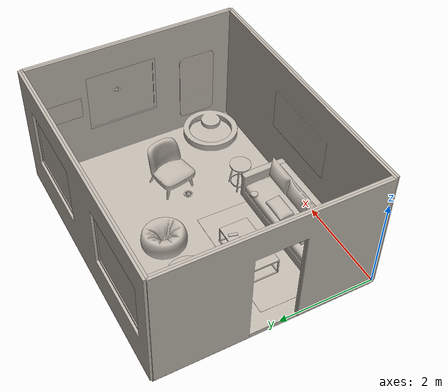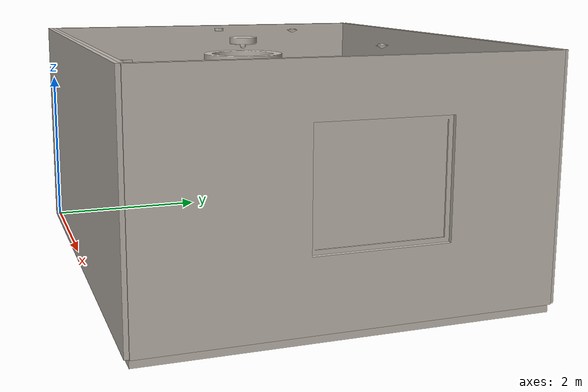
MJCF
<mujoco model="scene_scene_030">
  <compiler angle="radian" boundmass="0.001" boundinertia="0.001" meshdir="meshes" texturedir="meshes/scenesmith" />
  <visual>
    <headlight ambient="0.4 0.4 0.4" diffuse="0.8 0.8 0.8" specular="0.1 0.1 0.1" />
  </visual>
  <asset>
    <texture type="skybox" colorspace="auto" name="skybox" builtin="gradient" rgb1="0.3 0.5 0.7" rgb2="0 0 0" width="512" height="3072" />
    <texture type="2d" colorspace="auto" name="grid" builtin="checker" mark="edge" rgb1="0.2 0.3 0.4" rgb2="0.1 0.2 0.3" markrgb="0.8 0.8 0.8" width="512" height="512" />
    <texture type="2d" colorspace="linear" name="living_room_floors_floor_tex" file="living_room_floors_floor_texture.png" />
    <texture type="2d" colorspace="linear" name="living_room_north_wall_wall_tex" file="living_room_north_wall_wall_texture.png" />
    <texture type="2d" colorspace="linear" name="living_room_window_1_window_tex" file="living_room_window_1_window_texture.png" />
    <texture type="2d" colorspace="linear" name="living_room_coffee_table_1767838392_coffee_table_tex" file="living_room_coffee_table_1767838392_coffee_table_texture.png" />
    <texture type="2d" colorspace="linear" name="living_room_bean_bag_chair_1767838252_bean_bag_chair_tex" file="living_room_bean_bag_chair_1767838252_bean_bag_chair_texture.png" />
    <texture type="2d" colorspace="linear" name="living_room_couch_1767839693_couch_s1.11_1.11_1.11_tex" file="living_room_couch_1767839693_couch_s1.11_1.11_1.11_texture.png" />
    <texture type="2d" colorspace="linear" name="living_room_rug_1767841508_rug_tex" file="living_room_rug_1767841508_rug_texture.png" />
    <texture type="2d" colorspace="linear" name="living_room_side_table_1767841505_side_table_tex" file="living_room_side_table_1767841505_side_table_texture.png" />
    <texture type="2d" colorspace="linear" name="living_room_lounge_chair_1767841505_lounge_chair_tex" file="living_room_lounge_chair_1767841505_lounge_chair_texture.png" />
    <texture type="2d" colorspace="linear" name="living_room_canvas_print_1767842115_canvas_print_tex" file="living_room_canvas_print_1767842115_canvas_print_texture.png" />
    <texture type="2d" colorspace="linear" name="living_room_geometric_print_1767842115_geometric_print_tex" file="living_room_geometric_print_1767842115_geometric_print_texture.png" />
    <texture type="2d" colorspace="linear" name="living_room_mirror_1767842270_mirror_tex" file="living_room_mirror_1767842270_mirror_texture.png" />
    <texture type="2d" colorspace="linear" name="living_room_photograph_1767842115_photograph_tex" file="living_room_photograph_1767842115_photograph_texture.png" />
    <texture type="2d" colorspace="linear" name="living_room_abstract_print_1767842115_abstract_print_tex" file="living_room_abstract_print_1767842115_abstract_print_texture.png" />
    <texture type="2d" colorspace="linear" name="living_room_clock_1767842115_clock_tex" file="living_room_clock_1767842115_clock_texture.png" />
    <texture type="2d" colorspace="linear" name="living_room_semi_flush_ceiling_light_1767843282_semi_flush_ceiling_light_tex" file="living_room_semi_flush_ceiling_light_1767843282_semi_flush_ceiling_light_texture.png" />
    <texture type="2d" colorspace="linear" name="living_room_recessed_gimbal_downlight_1767842993_recessed_gimbal_downlight_tex" file="living_room_recessed_gimbal_downlight_1767842993_recessed_gimbal_downlight_texture.png" />
    <texture type="2d" colorspace="linear" name="living_room_smoke_detector_1767843051_smoke_detector_tex" file="living_room_smoke_detector_1767843051_smoke_detector_texture.png" />
    <texture type="2d" colorspace="linear" name="living_room_coffee_table_book_1767843750_coffee_table_book_tex" file="living_room_coffee_table_book_1767843750_coffee_table_book_texture.png" />
    <texture type="2d" colorspace="linear" name="living_room_tv_remote_control_1767844097_tv_remote_control_s0.42_0.42_0.42_tex" file="living_room_tv_remote_control_1767844097_tv_remote_control_s0.42_0.42_0.42_texture.png" />
    <texture type="2d" colorspace="linear" name="living_room_silicone_coaster_1767843954_silicone_coaster_tex" file="living_room_silicone_coaster_1767843954_silicone_coaster_texture.png" />
    <texture type="2d" colorspace="linear" name="living_room_glass_tumbler_1767843750_glass_tumbler_tex" file="living_room_glass_tumbler_1767843750_glass_tumbler_texture.png" />
    <texture type="2d" colorspace="linear" name="living_room_potted_succulent_plant_1767844729_potted_succulent_plant_tex" file="living_room_potted_succulent_plant_1767844729_potted_succulent_plant_texture.png" />
    <texture type="2d" colorspace="linear" name="living_room_glass_jar_1767844787_glass_jar_tex" file="living_room_glass_jar_1767844787_glass_jar_texture.png" />
    <texture type="2d" colorspace="linear" name="living_room_hardcover_book_1767844974_hardcover_book_s0.7_0.7_0.7_tex" file="living_room_hardcover_book_1767844974_hardcover_book_s0.7_0.7_0.7_texture.png" />
    <texture type="2d" colorspace="linear" name="living_room_throw_pillow_1767845800_throw_pillow_tex" file="living_room_throw_pillow_1767845800_throw_pillow_texture.png" />
    <texture type="2d" colorspace="linear" name="living_room_knit_throw_blanket_1767845434_knit_throw_blanket_tex" file="living_room_knit_throw_blanket_1767845434_knit_throw_blanket_texture.png" />
    <material name="grid" texture="grid" texrepeat="10 10" />
    <material name="living_room_floors_floor_tex" texture="living_room_floors_floor_tex" />
    <material name="living_room_north_wall_wall_tex" texture="living_room_north_wall_wall_tex" />
    <material name="living_room_window_1_window_tex" texture="living_room_window_1_window_tex" />
    <material name="living_room_coffee_table_1767838392_coffee_table_tex" texture="living_room_coffee_table_1767838392_coffee_table_tex" />
    <material name="living_room_bean_bag_chair_1767838252_bean_bag_chair_tex" texture="living_room_bean_bag_chair_1767838252_bean_bag_chair_tex" />
    <material name="living_room_couch_1767839693_couch_s1.11_1.11_1.11_tex" texture="living_room_couch_1767839693_couch_s1.11_1.11_1.11_tex" />
    <material name="living_room_rug_1767841508_rug_tex" texture="living_room_rug_1767841508_rug_tex" />
    <material name="living_room_side_table_1767841505_side_table_tex" texture="living_room_side_table_1767841505_side_table_tex" />
    <material name="living_room_lounge_chair_1767841505_lounge_chair_tex" texture="living_room_lounge_chair_1767841505_lounge_chair_tex" />
    <material name="living_room_canvas_print_1767842115_canvas_print_tex" texture="living_room_canvas_print_1767842115_canvas_print_tex" />
    <material name="living_room_geometric_print_1767842115_geometric_print_tex" texture="living_room_geometric_print_1767842115_geometric_print_tex" />
    <material name="living_room_mirror_1767842270_mirror_tex" texture="living_room_mirror_1767842270_mirror_tex" />
    <material name="living_room_photograph_1767842115_photograph_tex" texture="living_room_photograph_1767842115_photograph_tex" />
    <material name="living_room_abstract_print_1767842115_abstract_print_tex" texture="living_room_abstract_print_1767842115_abstract_print_tex" />
    <material name="living_room_clock_1767842115_clock_tex" texture="living_room_clock_1767842115_clock_tex" />
    <material name="living_room_semi_flush_ceiling_light_1767843282_semi_flush_ceiling_light_tex" texture="living_room_semi_flush_ceiling_light_1767843282_semi_flush_ceiling_light_tex" />
    <material name="living_room_recessed_gimbal_downlight_1767842993_recessed_gimbal_downlight_tex" texture="living_room_recessed_gimbal_downlight_1767842993_recessed_gimbal_downlight_tex" />
    <material name="living_room_smoke_detector_1767843051_smoke_detector_tex" texture="living_room_smoke_detector_1767843051_smoke_detector_tex" />
    <material name="living_room_coffee_table_book_1767843750_coffee_table_book_tex" texture="living_room_coffee_table_book_1767843750_coffee_table_book_tex" />
    <material name="living_room_tv_remote_control_1767844097_tv_remote_control_s0.42_0.42_0.42_tex" texture="living_room_tv_remote_control_1767844097_tv_remote_control_s0.42_0.42_0.42_tex" />
    <material name="living_room_silicone_coaster_1767843954_silicone_coaster_tex" texture="living_room_silicone_coaster_1767843954_silicone_coaster_tex" />
    <material name="living_room_glass_tumbler_1767843750_glass_tumbler_tex" texture="living_room_glass_tumbler_1767843750_glass_tumbler_tex" />
    <material name="living_room_potted_succulent_plant_1767844729_potted_succulent_plant_tex" texture="living_room_potted_succulent_plant_1767844729_potted_succulent_plant_tex" />
    <material name="living_room_glass_jar_1767844787_glass_jar_tex" texture="living_room_glass_jar_1767844787_glass_jar_tex" />
    <material name="living_room_hardcover_book_1767844974_hardcover_book_s0.7_0.7_0.7_tex" texture="living_room_hardcover_book_1767844974_hardcover_book_s0.7_0.7_0.7_tex" />
    <material name="living_room_throw_pillow_1767845800_throw_pillow_tex" texture="living_room_throw_pillow_1767845800_throw_pillow_tex" />
    <material name="living_room_knit_throw_blanket_1767845434_knit_throw_blanket_tex" texture="living_room_knit_throw_blanket_1767845434_knit_throw_blanket_tex" />
    <mesh name="room_geometry_living_room_room_geometry_body_link_floor_visual_visual_mesh" file="scenesmith/living_room_floors_floor.obj" />
    <mesh name="room_geometry_living_room_room_geometry_body_link_north_wall_visual_visual_mesh" file="scenesmith/living_room_north_wall_wall.obj" />
    <mesh name="room_geometry_living_room_room_geometry_body_link_window_1_visual_visual_mesh" file="scenesmith/living_room_window_1_window.obj" />
    <mesh name="room_geometry_living_room_room_geometry_body_link_south_wall_visual_visual_mesh" file="scenesmith/living_room_south_wall_wall.obj" />
    <mesh name="room_geometry_living_room_room_geometry_body_link_east_wall_visual_visual_mesh" file="scenesmith/living_room_east_wall_wall.obj" />
    <mesh name="room_geometry_living_room_room_geometry_body_link_window_3_visual_visual_mesh" file="scenesmith/living_room_window_3_window.obj" />
    <mesh name="room_geometry_living_room_room_geometry_body_link_west_wall_visual_visual_mesh" file="scenesmith/living_room_west_wall_wall.obj" />
    <mesh name="living_room_coffee_table_0_base_link_visual_visual_mesh" file="scenesmith/living_room_coffee_table_1767838392_coffee_table.obj" />
    <mesh name="living_room_bean_bag_chair_0_base_link_visual_visual_mesh" file="scenesmith/living_room_bean_bag_chair_1767838252_bean_bag_chair.obj" />
    <mesh name="living_room_couch_0_base_link_visual_visual_mesh" file="scenesmith/living_room_couch_1767839693_couch_s1.11_1.11_1.11.obj" />
    <mesh name="living_room_rug_0_base_link_visual_visual_mesh" file="scenesmith/living_room_rug_1767841508_rug.obj" />
    <mesh name="living_room_side_table_0_base_link_visual_visual_mesh" file="scenesmith/living_room_side_table_1767841505_side_table.obj" />
    <mesh name="living_room_lounge_chair_0_base_link_visual_visual_mesh" file="scenesmith/living_room_lounge_chair_1767841505_lounge_chair.obj" />
    <mesh name="living_room_canvas_print_0_base_link_visual_visual_mesh" file="scenesmith/living_room_canvas_print_1767842115_canvas_print.obj" />
    <mesh name="living_room_geometric_print_0_base_link_visual_visual_mesh" file="scenesmith/living_room_geometric_print_1767842115_geometric_print.obj" />
    <mesh name="living_room_mirror_0_base_link_visual_visual_mesh" file="scenesmith/living_room_mirror_1767842270_mirror.obj" />
    <mesh name="living_room_photograph_0_base_link_visual_visual_mesh" file="scenesmith/living_room_photograph_1767842115_photograph.obj" />
    <mesh name="living_room_abstract_print_0_base_link_visual_visual_mesh" file="scenesmith/living_room_abstract_print_1767842115_abstract_print.obj" />
    <mesh name="living_room_clock_0_base_link_visual_visual_mesh" file="scenesmith/living_room_clock_1767842115_clock.obj" />
    <mesh name="living_room_semi_flush_ceiling_light_0_base_link_visual_visual_mesh" file="scenesmith/living_room_semi_flush_ceiling_light_1767843282_semi_flush_ceiling_light.obj" />
    <mesh name="living_room_recessed_gimbal_downlight_0_base_link_visual_visual_mesh" file="scenesmith/living_room_recessed_gimbal_downlight_1767842993_recessed_gimbal_downlight.obj" />
    <mesh name="living_room_smoke_detector_0_base_link_visual_visual_mesh" file="scenesmith/living_room_smoke_detector_1767843051_smoke_detector.obj" />
    <mesh name="living_room_coffee_table_book_0_base_link_visual_visual_mesh" file="scenesmith/living_room_coffee_table_book_1767843750_coffee_table_book.obj" />
    <mesh name="living_room_tv_remote_control_0_base_link_visual_visual_mesh" file="scenesmith/living_room_tv_remote_control_1767844097_tv_remote_control_s0.42_0.42_0.42.obj" />
    <mesh name="living_room_silicone_coaster_0_s0_0_base_link_visual_visual_mesh" file="scenesmith/living_room_silicone_coaster_1767843954_silicone_coaster.obj" />
    <mesh name="living_room_glass_tumbler_0_s0_1_base_link_visual_visual_mesh" file="scenesmith/living_room_glass_tumbler_1767843750_glass_tumbler.obj" />
    <mesh name="living_room_potted_succulent_plant_0_base_link_visual_visual_mesh" file="scenesmith/living_room_potted_succulent_plant_1767844729_potted_succulent_plant.obj" />
    <mesh name="living_room_glass_jar_0_base_link_visual_visual_mesh" file="scenesmith/living_room_glass_jar_1767844787_glass_jar.obj" />
    <mesh name="living_room_hardcover_book_0_base_link_visual_visual_mesh" file="scenesmith/living_room_hardcover_book_1767844974_hardcover_book_s0.7_0.7_0.7.obj" />
    <mesh name="living_room_throw_pillow_0_base_link_visual_visual_mesh" file="scenesmith/living_room_throw_pillow_1767845800_throw_pillow.obj" />
    <mesh name="living_room_knit_throw_blanket_0_base_link_visual_visual_mesh" file="scenesmith/living_room_knit_throw_blanket_1767845434_knit_throw_blanket.obj" />
  </asset>
  <worldbody>
    <body name="room_geometry_living_room" pos="2.75 2.25 0">
      <body name="room_geometry_living_room_room_geometry_body_link">
        <geom name="room_geometry_living_room_room_geometry_body_link_floor_collision_collision" size="2.75 2.25 0.05" pos="0 0 -0.05" type="box" group="3" contype="1" conaffinity="1" rgba="0.2 0.8 0.3 0.001" />
        <geom name="room_geometry_living_room_room_geometry_body_link_north_wall_collision_collision" size="2.75 0.025 1.35" pos="0 2.225 1.35" type="box" group="3" contype="1" conaffinity="1" rgba="0.2 0.8 0.3 0.001" />
        <geom name="room_geometry_living_room_room_geometry_body_link_south_wall_collision_collision" size="2.75 0.025 1.35" pos="0 -2.225 1.35" type="box" group="3" contype="1" conaffinity="1" rgba="0.2 0.8 0.3 0.001" />
        <geom name="room_geometry_living_room_room_geometry_body_link_east_wall_collision_collision" size="0.025 2.25 1.35" pos="2.725 0 1.35" type="box" group="3" contype="1" conaffinity="1" rgba="0.2 0.8 0.3 0.001" />
        <geom name="room_geometry_living_room_room_geometry_body_link_west_wall_collision_0_collision" size="0.025 0.826696 1.35" pos="-2.725 -1.4233 1.35" type="box" group="3" contype="1" conaffinity="1" rgba="0.2 0.8 0.3 0.001" />
        <geom name="room_geometry_living_room_room_geometry_body_link_west_wall_collision_1_collision" size="0.025 0.923304 1.35" pos="-2.725 1.3267 1.35" type="box" group="3" contype="1" conaffinity="1" rgba="0.2 0.8 0.3 0.001" />
        <geom name="room_geometry_living_room_room_geometry_body_link_floor_visual_visual" type="mesh" contype="0" conaffinity="0" material="living_room_floors_floor_tex" mesh="room_geometry_living_room_room_geometry_body_link_floor_visual_visual_mesh" group="1" />
        <geom name="room_geometry_living_room_room_geometry_body_link_north_wall_visual_visual" pos="0 2.225 0" quat="1 0 0 0" type="mesh" contype="0" conaffinity="0" material="living_room_north_wall_wall_tex" mesh="room_geometry_living_room_room_geometry_body_link_north_wall_visual_visual_mesh" group="1" />
        <geom name="room_geometry_living_room_room_geometry_body_link_window_1_visual_visual" pos="-1.51008 2.225 1.45" quat="1 0 0 0" type="mesh" contype="0" conaffinity="0" material="living_room_window_1_window_tex" mesh="room_geometry_living_room_room_geometry_body_link_window_1_visual_visual_mesh" group="1" />
        <geom name="room_geometry_living_room_room_geometry_body_link_window_2_visual_visual" pos="1.33967 2.225 1.45" quat="1 0 0 0" type="mesh" contype="0" conaffinity="0" material="living_room_window_1_window_tex" mesh="room_geometry_living_room_room_geometry_body_link_window_1_visual_visual_mesh" group="1" />
        <geom name="room_geometry_living_room_room_geometry_body_link_north_wall_exterior_visual_visual" pos="0 2.275 0" quat="1 0 0 0" type="mesh" contype="0" conaffinity="0" material="living_room_north_wall_wall_tex" mesh="room_geometry_living_room_room_geometry_body_link_north_wall_visual_visual_mesh" group="1" />
        <geom name="room_geometry_living_room_room_geometry_body_link_south_wall_visual_visual" pos="0 -2.225 0" quat="1 0 0 0" type="mesh" contype="0" conaffinity="0" material="living_room_north_wall_wall_tex" mesh="room_geometry_living_room_room_geometry_body_link_south_wall_visual_visual_mesh" group="1" />
        <geom name="room_geometry_living_room_room_geometry_body_link_south_wall_exterior_visual_visual" pos="0 -2.275 0" quat="1 0 0 0" type="mesh" contype="0" conaffinity="0" material="living_room_north_wall_wall_tex" mesh="room_geometry_living_room_room_geometry_body_link_south_wall_visual_visual_mesh" group="1" />
        <geom name="room_geometry_living_room_room_geometry_body_link_east_wall_visual_visual" pos="2.725 0 0" quat="0.707105 0 0 0.707108" type="mesh" contype="0" conaffinity="0" material="living_room_north_wall_wall_tex" mesh="room_geometry_living_room_room_geometry_body_link_east_wall_visual_visual_mesh" group="1" />
        <geom name="room_geometry_living_room_room_geometry_body_link_window_3_visual_visual" pos="2.725 0.273496 1.45" quat="1 0 0 0" type="mesh" contype="0" conaffinity="0" material="living_room_window_1_window_tex" mesh="room_geometry_living_room_room_geometry_body_link_window_3_visual_visual_mesh" group="1" />
        <geom name="room_geometry_living_room_room_geometry_body_link_east_wall_exterior_visual_visual" pos="2.775 0 0" quat="0.707105 0 0 0.707108" type="mesh" contype="0" conaffinity="0" material="living_room_north_wall_wall_tex" mesh="room_geometry_living_room_room_geometry_body_link_east_wall_visual_visual_mesh" group="1" />
        <geom name="room_geometry_living_room_room_geometry_body_link_west_wall_visual_visual" pos="-2.725 0 0" quat="0.707105 0 0 0.707108" type="mesh" contype="0" conaffinity="0" material="living_room_north_wall_wall_tex" mesh="room_geometry_living_room_room_geometry_body_link_west_wall_visual_visual_mesh" group="1" />
        <geom name="room_geometry_living_room_room_geometry_body_link_west_wall_exterior_visual_visual" pos="-2.775 0 0" quat="0.707105 0 0 0.707108" type="mesh" contype="0" conaffinity="0" material="living_room_north_wall_wall_tex" mesh="room_geometry_living_room_room_geometry_body_link_west_wall_visual_visual_mesh" group="1" />
      </body>
    </body>
    <body name="living_room_coffee_table_0" pos="1.54329 1.74621 -0.000609882" quat="1 5.77811e-05 1.63364e-05 0.000878355">
      <body name="living_room_coffee_table_0_base_link">
        <geom name="living_room_coffee_table_0_base_link_visual_visual" type="mesh" contype="0" conaffinity="0" material="living_room_coffee_table_1767838392_coffee_table_tex" mesh="living_room_coffee_table_0_base_link_visual_visual_mesh" group="1" />
      </body>
      <geom name="living_room_coffee_table_0_static_collision" type="box" pos="0 0 0.1821873" size="0.6 0.306186 0.1821873" group="3" contype="1" conaffinity="1" rgba="0.2 0.8 0.3 0.001" friction="0.8 0.02 0.002" />
    </body>
    <body name="living_room_bean_bag_chair_0" pos="1.50888 3.03652 -0.00127092" quat="0.999829 -0.00117003 -0.00173349 0.0183654">
      <body name="living_room_bean_bag_chair_0_base_link">
        <geom name="living_room_bean_bag_chair_0_base_link_visual_visual" type="mesh" contype="0" conaffinity="0" material="living_room_bean_bag_chair_1767838252_bean_bag_chair_tex" mesh="living_room_bean_bag_chair_0_base_link_visual_visual_mesh" group="1" />
      </body>
      <geom name="living_room_bean_bag_chair_0_static_collision" type="box" pos="0 0 0.1793727" size="0.45 0.456452 0.1793727" group="3" contype="1" conaffinity="1" rgba="0.2 0.8 0.3 0.001" friction="0.8 0.02 0.002" />
    </body>
    <body name="living_room_bean_bag_chair_1" pos="2.58945 3.01152 -0.00127092" quat="0.999992 -0.00120757 -0.00170755 -0.00345188">
      <body name="living_room_bean_bag_chair_1_base_link">
        <geom name="living_room_bean_bag_chair_1_base_link_visual_visual" type="mesh" contype="0" conaffinity="0" material="living_room_bean_bag_chair_1767838252_bean_bag_chair_tex" mesh="living_room_bean_bag_chair_0_base_link_visual_visual_mesh" group="1" />
      </body>
      <geom name="living_room_bean_bag_chair_1_static_collision" type="box" pos="0 0 0.1793727" size="0.45 0.456452 0.1793727" group="3" contype="1" conaffinity="1" rgba="0.2 0.8 0.3 0.001" friction="0.8 0.02 0.002" />
    </body>
    <body name="living_room_couch_0" pos="1.58275 0.596787 -0.00136116" quat="1 0.000479238 -9.66477e-06 -1.33779e-05">
      <body name="living_room_couch_0_base_link">
        <geom name="living_room_couch_0_base_link_visual_visual" type="mesh" contype="0" conaffinity="0" material="living_room_couch_1767839693_couch_s1.11_1.11_1.11_tex" mesh="living_room_couch_0_base_link_visual_visual_mesh" group="1" />
      </body>
      <geom name="living_room_couch_0_static_collision" type="box" pos="0 0 0.4353264" size="1.4495 0.4825557 0.4353264" group="3" contype="1" conaffinity="1" rgba="0.2 0.8 0.3 0.001" friction="0.8 0.02 0.002" />
    </body>
    <body name="living_room_rug_0" pos="1.55703 1.33752 0" quat="0.999985 0 0 -0.00539248">
      <body name="living_room_rug_0_base_link">
        <geom name="living_room_rug_0_base_link_visual_visual" type="mesh" contype="0" conaffinity="0" material="living_room_rug_1767841508_rug_tex" mesh="living_room_rug_0_base_link_visual_visual_mesh" group="1" />
      </body>
      <geom name="living_room_rug_0_static_collision" type="box" pos="0 0 0.0015" size="1.25 0.85 0.005" group="3" contype="1" conaffinity="1" rgba="0.2 0.8 0.3 0.001" friction="0.8 0.02 0.002" />
    </body>
    <body name="living_room_side_table_0" pos="3.28581 0.936507 -0.00227074" quat="0.999981 -0.00178818 -0.00051207 -0.0059059">
      <body name="living_room_side_table_0_base_link">
        <geom name="living_room_side_table_0_base_link_visual_visual" type="mesh" contype="0" conaffinity="0" material="living_room_side_table_1767841505_side_table_tex" mesh="living_room_side_table_0_base_link_visual_visual_mesh" group="1" />
      </body>
      <geom name="living_room_side_table_0_static_collision" type="box" pos="0 0 0.2993177" size="0.225 0.2159581 0.2993177" group="3" contype="1" conaffinity="1" rgba="0.2 0.8 0.3 0.001" friction="0.8 0.02 0.002" />
    </body>
    <body name="living_room_lounge_chair_0" pos="3.96281 2.18578 -0.00218798" quat="0.636514 7.70653e-05 0.000436908 0.771265">
      <body name="living_room_lounge_chair_0_base_link">
        <geom name="living_room_lounge_chair_0_base_link_visual_visual" type="mesh" contype="0" conaffinity="0" material="living_room_lounge_chair_1767841505_lounge_chair_tex" mesh="living_room_lounge_chair_0_base_link_visual_visual_mesh" group="1" />
      </body>
      <geom name="living_room_lounge_chair_0_static_collision" type="box" pos="0 0 0.4609135" size="0.375 0.4206442 0.4609135" group="3" contype="1" conaffinity="1" rgba="0.2 0.8 0.3 0.001" friction="0.8 0.02 0.002" />
    </body>
    <body name="living_room_canvas_print_0" pos="2.65 0.05 1.55836" quat="1 0 -0.000815025 0">
      <body name="living_room_canvas_print_0_base_link">
        <geom name="living_room_canvas_print_0_base_link_visual_visual" type="mesh" contype="0" conaffinity="0" material="living_room_canvas_print_1767842115_canvas_print_tex" mesh="living_room_canvas_print_0_base_link_visual_visual_mesh" group="1" />
      </body>
      <geom name="living_room_canvas_print_0_static_collision" type="box" pos="0 0.01055027 0" size="0.8691478 0.01055027 0.45" group="3" contype="1" conaffinity="1" rgba="0.2 0.8 0.3 0.001" friction="0.8 0.02 0.002" />
    </body>
    <body name="living_room_geometric_print_0" pos="5.45 3.82 1.45" quat="0.707107 0 0 0.707107">
      <body name="living_room_geometric_print_0_base_link">
        <geom name="living_room_geometric_print_0_base_link_visual_visual" type="mesh" contype="0" conaffinity="0" material="living_room_geometric_print_1767842115_geometric_print_tex" mesh="living_room_geometric_print_0_base_link_visual_visual_mesh" group="1" />
      </body>
      <geom name="living_room_geometric_print_0_static_collision" type="box" pos="0 0.008105335 0" size="0.4 0.008105335 0.2347752" group="3" contype="1" conaffinity="1" rgba="0.2 0.8 0.3 0.001" friction="0.8 0.02 0.002" />
    </body>
    <body name="living_room_mirror_0" pos="5.45 0.819085 1.1" quat="0.707106 0.00130315 -0.00130315 0.707106">
      <body name="living_room_mirror_0_base_link">
        <geom name="living_room_mirror_0_base_link_visual_visual" type="mesh" contype="0" conaffinity="0" material="living_room_mirror_1767842270_mirror_tex" mesh="living_room_mirror_0_base_link_visual_visual_mesh" group="1" />
      </body>
      <geom name="living_room_mirror_0_static_collision" type="box" pos="0 0.01053924 0" size="0.4 0.01053924 0.771327" group="3" contype="1" conaffinity="1" rgba="0.2 0.8 0.3 0.001" friction="0.8 0.02 0.002" />
    </body>
    <body name="living_room_photograph_0" pos="0.05 3.28715 1.49614" quat="0.707097 -0.00377367 -0.00377367 -0.707097">
      <body name="living_room_photograph_0_base_link">
        <geom name="living_room_photograph_0_base_link_visual_visual" type="mesh" contype="0" conaffinity="0" material="living_room_photograph_1767842115_photograph_tex" mesh="living_room_photograph_0_base_link_visual_visual_mesh" group="1" />
      </body>
      <geom name="living_room_photograph_0_static_collision" type="box" pos="0 0.009305875 0" size="0.275 0.009305875 0.38801" group="3" contype="1" conaffinity="1" rgba="0.2 0.8 0.3 0.001" friction="0.8 0.02 0.002" />
    </body>
    <body name="living_room_photograph_1" pos="0.05 4.06695 1.51753" quat="0.707106 0.000922164 0.000922164 -0.707106">
      <body name="living_room_photograph_1_base_link">
        <geom name="living_room_photograph_1_base_link_visual_visual" type="mesh" contype="0" conaffinity="0" material="living_room_photograph_1767842115_photograph_tex" mesh="living_room_photograph_0_base_link_visual_visual_mesh" group="1" />
      </body>
      <geom name="living_room_photograph_1_static_collision" type="box" pos="0 0.009305875 0" size="0.275 0.009305875 0.38801" group="3" contype="1" conaffinity="1" rgba="0.2 0.8 0.3 0.001" friction="0.8 0.02 0.002" />
    </body>
    <body name="living_room_abstract_print_0" pos="0.05 0.87422 1.55" quat="0.707104 0.00198851 0.00198851 -0.707104">
      <body name="living_room_abstract_print_0_base_link">
        <geom name="living_room_abstract_print_0_base_link_visual_visual" type="mesh" contype="0" conaffinity="0" material="living_room_abstract_print_1767842115_abstract_print_tex" mesh="living_room_abstract_print_0_base_link_visual_visual_mesh" group="1" />
      </body>
      <geom name="living_room_abstract_print_0_static_collision" type="box" pos="0 0.01328513 0" size="0.25 0.01328513 0.6791843" group="3" contype="1" conaffinity="1" rgba="0.2 0.8 0.3 0.001" friction="0.8 0.02 0.002" />
    </body>
    <body name="living_room_clock_0" pos="2.6973 4.45 1.78389" quat="0 0.00208587 0 0.999998">
      <body name="living_room_clock_0_base_link">
        <geom name="living_room_clock_0_base_link_visual_visual" type="mesh" contype="0" conaffinity="0" material="living_room_clock_1767842115_clock_tex" mesh="living_room_clock_0_base_link_visual_visual_mesh" group="1" />
      </body>
      <geom name="living_room_clock_0_static_collision" type="box" pos="0 0.01119733 0" size="0.25 0.01119733 0.2499977" group="3" contype="1" conaffinity="1" rgba="0.2 0.8 0.3 0.001" friction="0.8 0.02 0.002" />
    </body>
    <body name="living_room_semi_flush_ceiling_light_0" pos="2.65 2 2.7">
      <body name="living_room_semi_flush_ceiling_light_0_base_link">
        <geom name="living_room_semi_flush_ceiling_light_0_base_link_visual_visual" type="mesh" contype="0" conaffinity="0" material="living_room_semi_flush_ceiling_light_1767843282_semi_flush_ceiling_light_tex" mesh="living_room_semi_flush_ceiling_light_0_base_link_visual_visual_mesh" group="1" />
      </body>
      <geom name="living_room_semi_flush_ceiling_light_0_static_collision" type="box" pos="0 0 -0.1591191" size="0.475 0.4750247 0.1591191" group="3" contype="1" conaffinity="1" rgba="0.2 0.8 0.3 0.001" friction="0.8 0.02 0.002" />
    </body>
    <body name="living_room_recessed_gimbal_downlight_0" pos="1.23161 3.16992 2.7" quat="0.999998 0 0 -0.00185724">
      <body name="living_room_recessed_gimbal_downlight_0_base_link">
        <geom name="living_room_recessed_gimbal_downlight_0_base_link_visual_visual" type="mesh" contype="0" conaffinity="0" material="living_room_recessed_gimbal_downlight_1767842993_recessed_gimbal_downlight_tex" mesh="living_room_recessed_gimbal_downlight_0_base_link_visual_visual_mesh" group="1" />
      </body>
      <geom name="living_room_recessed_gimbal_downlight_0_static_collision" type="box" pos="0 0 -0.02363695" size="0.07 0.06999131 0.02363695" group="3" contype="1" conaffinity="1" rgba="0.2 0.8 0.3 0.001" friction="0.8 0.02 0.002" />
    </body>
    <body name="living_room_recessed_gimbal_downlight_1" pos="4.2 3.11 2.7" quat="0.984808 0 0 -0.173648">
      <body name="living_room_recessed_gimbal_downlight_1_base_link">
        <geom name="living_room_recessed_gimbal_downlight_1_base_link_visual_visual" type="mesh" contype="0" conaffinity="0" material="living_room_recessed_gimbal_downlight_1767842993_recessed_gimbal_downlight_tex" mesh="living_room_recessed_gimbal_downlight_0_base_link_visual_visual_mesh" group="1" />
      </body>
      <geom name="living_room_recessed_gimbal_downlight_1_static_collision" type="box" pos="0 0 -0.02363695" size="0.07 0.06999131 0.02363695" group="3" contype="1" conaffinity="1" rgba="0.2 0.8 0.3 0.001" friction="0.8 0.02 0.002" />
    </body>
    <body name="living_room_smoke_detector_0" pos="0.735228 2.24402 2.7" quat="1 0 0 0.000127475">
      <body name="living_room_smoke_detector_0_base_link">
        <geom name="living_room_smoke_detector_0_base_link_visual_visual" type="mesh" contype="0" conaffinity="0" material="living_room_smoke_detector_1767843051_smoke_detector_tex" mesh="living_room_smoke_detector_0_base_link_visual_visual_mesh" group="1" />
      </body>
      <geom name="living_room_smoke_detector_0_static_collision" type="box" pos="0 0 -0.01953387" size="0.06 0.0599721 0.01953387" group="3" contype="1" conaffinity="1" rgba="0.2 0.8 0.3 0.001" friction="0.8 0.02 0.002" />
    </body>
    <body name="living_room_coffee_table_book_0" pos="1.37446 1.69377 0.361522" quat="0.99524 -5.87242e-05 0.00585558 0.0972737">
      <body name="living_room_coffee_table_book_0_base_link">
        <geom name="living_room_coffee_table_book_0_base_link_visual_visual" type="mesh" contype="0" conaffinity="0" material="living_room_coffee_table_book_1767843750_coffee_table_book_tex" mesh="living_room_coffee_table_book_0_base_link_visual_visual_mesh" group="1" />
      </body>
      <geom name="living_room_coffee_table_book_0_static_collision" type="box" pos="0 0 0.02237896" size="0.14 0.1402194 0.02237896" group="3" contype="1" conaffinity="1" rgba="0.2 0.8 0.3 0.001" friction="0.8 0.02 0.002" />
    </body>
    <body name="living_room_tv_remote_control_0" pos="1.87573 1.89947 0.362109" quat="0.990957 0.000516138 0.00174807 -0.134168">
      <body name="living_room_tv_remote_control_0_base_link">
        <geom name="living_room_tv_remote_control_0_base_link_visual_visual" type="mesh" contype="0" conaffinity="0" material="living_room_tv_remote_control_1767844097_tv_remote_control_s0.42_0.42_0.42_tex" mesh="living_room_tv_remote_control_0_base_link_visual_visual_mesh" group="1" />
      </body>
      <geom name="living_room_tv_remote_control_0_static_collision" type="box" pos="0 0 0.00945" size="0.03218558 0.09098153 0.00945" group="3" contype="1" conaffinity="1" rgba="0.2 0.8 0.3 0.001" friction="0.8 0.02 0.002" />
    </body>
    <body name="living_room_silicone_coaster_0_s0_0" pos="1.66313 1.84627 0.363014" quat="0.998979 -0.001462 0.00116557 0.0451375">
      <body name="living_room_silicone_coaster_0_s0_0_base_link">
        <geom name="living_room_silicone_coaster_0_s0_0_base_link_visual_visual" type="mesh" contype="0" conaffinity="0" material="living_room_silicone_coaster_1767843954_silicone_coaster_tex" mesh="living_room_silicone_coaster_0_s0_0_base_link_visual_visual_mesh" group="1" />
      </body>
      <geom name="living_room_silicone_coaster_0_s0_0_static_collision" type="box" pos="0 0 0.00204048" size="0.05 0.04881134 0.005" group="3" contype="1" conaffinity="1" rgba="0.2 0.8 0.3 0.001" friction="0.8 0.02 0.002" />
    </body>
    <body name="living_room_glass_tumbler_0_s0_1" pos="1.66314 1.84628 0.367019" quat="0.99898 -0.00174308 0.00171702 0.0450859">
      <body name="living_room_glass_tumbler_0_s0_1_base_link">
        <geom name="living_room_glass_tumbler_0_s0_1_base_link_visual_visual" type="mesh" contype="0" conaffinity="0" material="living_room_glass_tumbler_1767843750_glass_tumbler_tex" mesh="living_room_glass_tumbler_0_s0_1_base_link_visual_visual_mesh" group="1" />
      </body>
      <geom name="living_room_glass_tumbler_0_s0_1_static_collision" type="box" pos="0 0 0.04823677" size="0.04 0.04153081 0.04823677" group="3" contype="1" conaffinity="1" rgba="0.2 0.8 0.3 0.001" friction="0.8 0.02 0.002" />
    </body>
    <body name="living_room_throw_pillow_0" pos="1.93344 0.83744 0.488918" quat="0.998662 -0.0515196 -0.00434809 0.00139106">
      <body name="living_room_throw_pillow_0_base_link">
        <geom name="living_room_throw_pillow_0_base_link_visual_visual" type="mesh" contype="0" conaffinity="0" material="living_room_throw_pillow_1767845800_throw_pillow_tex" mesh="living_room_throw_pillow_0_base_link_visual_visual_mesh" group="1" />
      </body>
      <geom name="living_room_throw_pillow_0_static_collision" type="box" pos="0 0 0.05553889" size="0.275 0.1556479 0.05553889" group="3" contype="1" conaffinity="1" rgba="0.2 0.8 0.3 0.001" friction="0.8 0.02 0.002" />
    </body>
    <body name="living_room_knit_throw_blanket_0" pos="1.23085 0.840576 0.487562" quat="0.998967 -0.04534 0.0030813 0.000628014">
      <body name="living_room_knit_throw_blanket_0_base_link">
        <geom name="living_room_knit_throw_blanket_0_base_link_visual_visual" type="mesh" contype="0" conaffinity="0" material="living_room_knit_throw_blanket_1767845434_knit_throw_blanket_tex" mesh="living_room_knit_throw_blanket_0_base_link_visual_visual_mesh" group="1" />
      </body>
      <geom name="living_room_knit_throw_blanket_0_static_collision" type="box" pos="0 0 0.05854559" size="0.25 0.1320488 0.05854559" group="3" contype="1" conaffinity="1" rgba="0.2 0.8 0.3 0.001" friction="0.8 0.02 0.002" />
    </body>
  </worldbody>
</mujoco>
